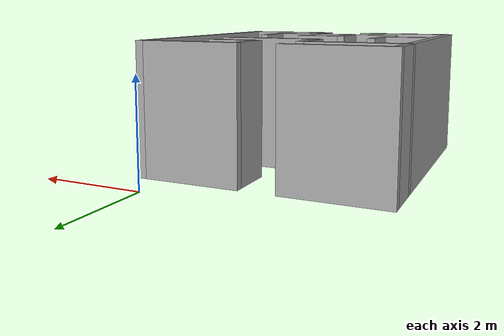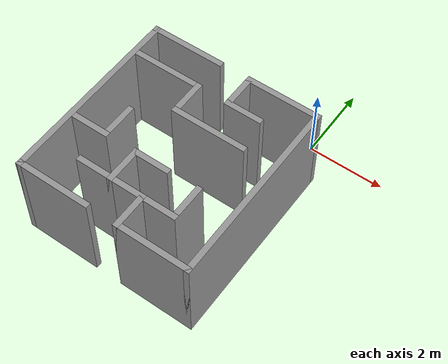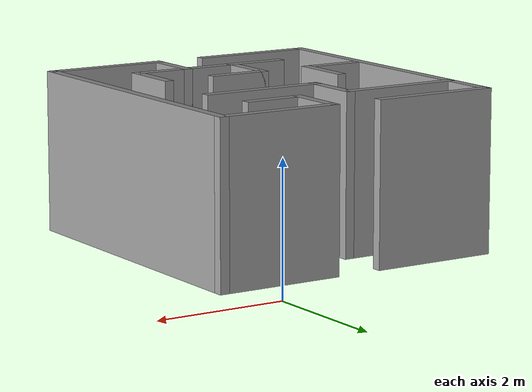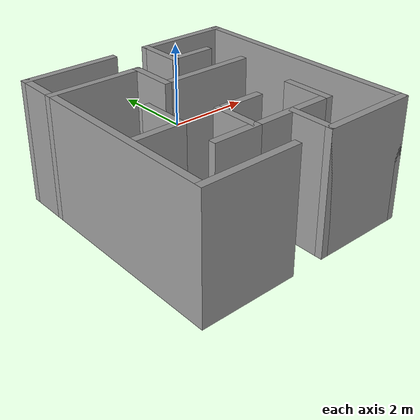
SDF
<?xml version='1.0'?>
<sdf version='1.6'>
  <model name='maze_1'>
    <pose frame=''>-1.815 -3.255 0 0 -0 0</pose>
    <link name='Wall_0'>
      <collision name='Wall_0_Collision'>
        <geometry>
          <box>
            <size>5 0.15 2.5</size>
          </box>
        </geometry>
        <pose frame=''>0 0 1.25 0 -0 0</pose>
      </collision>
      <visual name='Wall_0_Visual'>
        <pose frame=''>0 0 1.25 0 -0 0</pose>
        <geometry>
          <box>
            <size>5 0.15 2.5</size>
          </box>
        </geometry>
        <material>
          <script>
            <uri>file://media/materials/scripts/gazebo.material</uri>
            <name>Gazebo/Grey</name>
          </script>
          <ambient>1 1 1 1</ambient>
        </material>
        <meta>
          <layer>0</layer>
        </meta>
      </visual>
      <pose frame=''>-2.275 -0 0 0 -0 -1.5708</pose>
    </link>
    <link name='Wall_1'>
      <collision name='Wall_1_Collision'>
        <geometry>
          <box>
            <size>2 0.15 2.5</size>
          </box>
        </geometry>
        <pose frame=''>0 0 1.25 0 -0 0</pose>
      </collision>
      <visual name='Wall_1_Visual'>
        <pose frame=''>0 0 1.25 0 -0 0</pose>
        <geometry>
          <box>
            <size>2 0.15 2.5</size>
          </box>
        </geometry>
        <material>
          <script>
            <uri>file://media/materials/scripts/gazebo.material</uri>
            <name>Gazebo/Grey</name>
          </script>
          <ambient>1 1 1 1</ambient>
        </material>
        <meta>
          <layer>0</layer>
        </meta>
      </visual>
      <pose frame=''>-1.35 -2.425 0 0 -0 0</pose>
    </link>
    <link name='Wall_10'>
      <collision name='Wall_10_Collision'>
        <geometry>
          <box>
            <size>1 0.15 2.5</size>
          </box>
        </geometry>
        <pose frame=''>0 0 1.25 0 -0 0</pose>
      </collision>
      <visual name='Wall_10_Visual'>
        <pose frame=''>0 0 1.25 0 -0 0</pose>
        <geometry>
          <box>
            <size>1 0.15 2.5</size>
          </box>
        </geometry>
        <material>
          <script>
            <uri>file://media/materials/scripts/gazebo.material</uri>
            <name>Gazebo/Grey</name>
          </script>
          <ambient>1 1 1 1</ambient>
        </material>
        <meta>
          <layer>0</layer>
        </meta>
      </visual>
      <pose frame=''>0.85 1.575 0 0 -0 0</pose>
    </link>
    <link name='Wall_12'>
      <collision name='Wall_12_Collision'>
        <geometry>
          <box>
            <size>1 0.15 2.5</size>
          </box>
        </geometry>
        <pose frame=''>0 0 1.25 0 -0 0</pose>
      </collision>
      <visual name='Wall_12_Visual'>
        <pose frame=''>0 0 1.25 0 -0 0</pose>
        <geometry>
          <box>
            <size>1 0.15 2.5</size>
          </box>
        </geometry>
        <material>
          <script>
            <uri>file://media/materials/scripts/gazebo.material</uri>
            <name>Gazebo/Grey</name>
          </script>
          <ambient>1 1 1 1</ambient>
        </material>
        <meta>
          <layer>0</layer>
        </meta>
      </visual>
      <pose frame=''>0.425 -2 0 0 -0 1.5708</pose>
    </link>
    <link name='Wall_13'>
      <collision name='Wall_13_Collision'>
        <geometry>
          <box>
            <size>1 0.15 2.5</size>
          </box>
        </geometry>
        <pose frame=''>0 0 1.25 0 -0 0</pose>
      </collision>
      <visual name='Wall_13_Visual'>
        <pose frame=''>0 0 1.25 0 -0 0</pose>
        <geometry>
          <box>
            <size>1 0.15 2.5</size>
          </box>
        </geometry>
        <material>
          <script>
            <uri>file://media/materials/scripts/gazebo.material</uri>
            <name>Gazebo/Grey</name>
          </script>
          <ambient>1 1 1 1</ambient>
        </material>
        <meta>
          <layer>0</layer>
        </meta>
      </visual>
      <pose frame=''>0 -1.575 0 0 -0 3.14159</pose>
    </link>
    <link name='Wall_14'>
      <collision name='Wall_14_Collision'>
        <geometry>
          <box>
            <size>1 0.15 2.5</size>
          </box>
        </geometry>
        <pose frame=''>0 0 1.25 0 -0 0</pose>
      </collision>
      <visual name='Wall_14_Visual'>
        <pose frame=''>0 0 1.25 0 -0 0</pose>
        <geometry>
          <box>
            <size>1 0.15 2.5</size>
          </box>
        </geometry>
        <material>
          <script>
            <uri>file://media/materials/scripts/gazebo.material</uri>
            <name>Gazebo/Grey</name>
          </script>
          <ambient>1 1 1 1</ambient>
        </material>
        <meta>
          <layer>0</layer>
        </meta>
      </visual>
      <pose frame=''>-0.425 -1.15 0 0 -0 1.5708</pose>
    </link>
    <link name='Wall_15'>
      <collision name='Wall_15_Collision'>
        <geometry>
          <box>
            <size>1 0.15 2.5</size>
          </box>
        </geometry>
        <pose frame=''>0 0 1.25 0 -0 0</pose>
      </collision>
      <visual name='Wall_15_Visual'>
        <pose frame=''>0 0 1.25 0 -0 0</pose>
        <geometry>
          <box>
            <size>1 0.15 2.5</size>
          </box>
        </geometry>
        <material>
          <script>
            <uri>file://media/materials/scripts/gazebo.material</uri>
            <name>Gazebo/Grey</name>
          </script>
          <ambient>1 1 1 1</ambient>
        </material>
        <meta>
          <layer>0</layer>
        </meta>
      </visual>
      <pose frame=''>0 -0.725 0 0 -0 0</pose>
    </link>
    <link name='Wall_17'>
      <collision name='Wall_17_Collision'>
        <geometry>
          <box>
            <size>1 0.15 2.5</size>
          </box>
        </geometry>
        <pose frame=''>0 0 1.25 0 -0 0</pose>
      </collision>
      <visual name='Wall_17_Visual'>
        <pose frame=''>0 0 1.25 0 -0 0</pose>
        <geometry>
          <box>
            <size>1 0.15 2.5</size>
          </box>
        </geometry>
        <material>
          <script>
            <uri>file://media/materials/scripts/gazebo.material</uri>
            <name>Gazebo/Grey</name>
          </script>
          <ambient>1 1 1 1</ambient>
        </material>
        <meta>
          <layer>0</layer>
        </meta>
      </visual>
      <pose frame=''>0.85 -1.575 0 0 -0 0</pose>
    </link>
    <link name='Wall_18'>
      <collision name='Wall_18_Collision'>
        <geometry>
          <box>
            <size>1 0.15 2.5</size>
          </box>
        </geometry>
        <pose frame=''>0 0 1.25 0 -0 0</pose>
      </collision>
      <visual name='Wall_18_Visual'>
        <pose frame=''>0 0 1.25 0 -0 0</pose>
        <geometry>
          <box>
            <size>1 0.15 2.5</size>
          </box>
        </geometry>
        <material>
          <script>
            <uri>file://media/materials/scripts/gazebo.material</uri>
            <name>Gazebo/Grey</name>
          </script>
          <ambient>1 1 1 1</ambient>
        </material>
        <meta>
          <layer>0</layer>
        </meta>
      </visual>
      <pose frame=''>1.275 -1.15 0 0 -0 1.5708</pose>
    </link>
    <link name='Wall_20'>
      <collision name='Wall_20_Collision'>
        <geometry>
          <box>
            <size>1 0.15 2.5</size>
          </box>
        </geometry>
        <pose frame=''>0 0 1.25 0 -0 0</pose>
      </collision>
      <visual name='Wall_20_Visual'>
        <pose frame=''>0 0 1.25 0 -0 0</pose>
        <geometry>
          <box>
            <size>1 0.15 2.5</size>
          </box>
        </geometry>
        <material>
          <script>
            <uri>file://media/materials/scripts/gazebo.material</uri>
            <name>Gazebo/Grey</name>
          </script>
          <ambient>1 1 1 1</ambient>
        </material>
        <meta>
          <layer>0</layer>
        </meta>
      </visual>
      <pose frame=''>-0.85 -1.575 0 0 -0 3.14159</pose>
    </link>
    <link name='Wall_23'>
      <collision name='Wall_23_Collision'>
        <geometry>
          <box>
            <size>1 0.15 2.5</size>
          </box>
        </geometry>
        <pose frame=''>0 0 1.25 0 -0 0</pose>
      </collision>
      <visual name='Wall_23_Visual'>
        <pose frame=''>0 0 1.25 0 -0 0</pose>
        <geometry>
          <box>
            <size>1 0.15 2.5</size>
          </box>
        </geometry>
        <material>
          <script>
            <uri>file://media/materials/scripts/gazebo.material</uri>
            <name>Gazebo/Grey</name>
          </script>
          <ambient>1 1 1 1</ambient>
        </material>
        <meta>
          <layer>0</layer>
        </meta>
      </visual>
      <pose frame=''>-1.7 -0.725 0 0 -0 3.14159</pose>
    </link>
    <link name='Wall_25'>
      <collision name='Wall_25_Collision'>
        <geometry>
          <box>
            <size>1 0.15 2.5</size>
          </box>
        </geometry>
        <pose frame=''>0 0 1.25 0 -0 0</pose>
      </collision>
      <visual name='Wall_25_Visual'>
        <pose frame=''>0 0 1.25 0 -0 0</pose>
        <geometry>
          <box>
            <size>1 0.15 2.5</size>
          </box>
        </geometry>
        <material>
          <script>
            <uri>file://media/materials/scripts/gazebo.material</uri>
            <name>Gazebo/Grey</name>
          </script>
          <ambient>1 1 1 1</ambient>
        </material>
        <meta>
          <layer>0</layer>
        </meta>
      </visual>
      <pose frame=''>-1.275 -0.3 0 0 -0 1.5708</pose>
    </link>
    <link name='Wall_28'>
      <collision name='Wall_28_Collision'>
        <geometry>
          <box>
            <size>2 0.15 2.5</size>
          </box>
        </geometry>
        <pose frame=''>0 0 1.25 0 -0 0</pose>
      </collision>
      <visual name='Wall_28_Visual'>
        <pose frame=''>0 0 1.25 0 -0 0</pose>
        <geometry>
          <box>
            <size>2 0.15 2.5</size>
          </box>
        </geometry>
        <material>
          <script>
            <uri>file://media/materials/scripts/gazebo.material</uri>
            <name>Gazebo/Grey</name>
          </script>
          <ambient>1 1 1 1</ambient>
        </material>
        <meta>
          <layer>0</layer>
        </meta>
      </visual>
      <pose frame=''>-1.35 1.575 0 0 -0 3.14159</pose>
    </link>
    <link name='Wall_3'>
      <collision name='Wall_3_Collision'>
        <geometry>
          <box>
            <size>2 0.15 2.5</size>
          </box>
        </geometry>
        <pose frame=''>0 0 1.25 0 -0 0</pose>
      </collision>
      <visual name='Wall_3_Visual'>
        <pose frame=''>0 0 1.25 0 -0 0</pose>
        <geometry>
          <box>
            <size>2 0.15 2.5</size>
          </box>
        </geometry>
        <material>
          <script>
            <uri>file://media/materials/scripts/gazebo.material</uri>
            <name>Gazebo/Grey</name>
          </script>
          <ambient>1 1 1 1</ambient>
        </material>
        <meta>
          <layer>0</layer>
        </meta>
      </visual>
      <pose frame=''>1.35 -2.425 0 0 -0 0</pose>
    </link>
    <link name='Wall_30'>
      <collision name='Wall_30_Collision'>
        <geometry>
          <box>
            <size>1 0.15 2.5</size>
          </box>
        </geometry>
        <pose frame=''>0 0 1.25 0 -0 0</pose>
      </collision>
      <visual name='Wall_30_Visual'>
        <pose frame=''>0 0 1.25 0 -0 0</pose>
        <geometry>
          <box>
            <size>1 0.15 2.5</size>
          </box>
        </geometry>
        <material>
          <script>
            <uri>file://media/materials/scripts/gazebo.material</uri>
            <name>Gazebo/Grey</name>
          </script>
          <ambient>1 1 1 1</ambient>
        </material>
        <meta>
          <layer>0</layer>
        </meta>
      </visual>
      <pose frame=''>-0.425 1.15 0 0 -0 -1.5708</pose>
    </link>
    <link name='Wall_31'>
      <collision name='Wall_31_Collision'>
        <geometry>
          <box>
            <size>2 0.15 2.5</size>
          </box>
        </geometry>
        <pose frame=''>0 0 1.25 0 -0 0</pose>
      </collision>
      <visual name='Wall_31_Visual'>
        <pose frame=''>0 0 1.25 0 -0 0</pose>
        <geometry>
          <box>
            <size>2 0.15 2.5</size>
          </box>
        </geometry>
        <material>
          <script>
            <uri>file://media/materials/scripts/gazebo.material</uri>
            <name>Gazebo/Grey</name>
          </script>
          <ambient>1 1 1 1</ambient>
        </material>
        <meta>
          <layer>0</layer>
        </meta>
      </visual>
      <pose frame=''>0.5 0.725 0 0 -0 0</pose>
    </link>
    <link name='Wall_4'>
      <collision name='Wall_4_Collision'>
        <geometry>
          <box>
            <size>5 0.15 2.5</size>
          </box>
        </geometry>
        <pose frame=''>0 0 1.25 0 -0 0</pose>
      </collision>
      <visual name='Wall_4_Visual'>
        <pose frame=''>0 0 1.25 0 -0 0</pose>
        <geometry>
          <box>
            <size>5 0.15 2.5</size>
          </box>
        </geometry>
        <material>
          <script>
            <uri>file://media/materials/scripts/gazebo.material</uri>
            <name>Gazebo/Grey</name>
          </script>
          <ambient>1 1 1 1</ambient>
        </material>
        <meta>
          <layer>0</layer>
        </meta>
      </visual>
      <pose frame=''>2.275 -0 0 0 -0 1.5708</pose>
    </link>
    <link name='Wall_5'>
      <collision name='Wall_5_Collision'>
        <geometry>
          <box>
            <size>2 0.15 2.5</size>
          </box>
        </geometry>
        <pose frame=''>0 0 1.25 0 -0 0</pose>
      </collision>
      <visual name='Wall_5_Visual'>
        <pose frame=''>0 0 1.25 0 -0 0</pose>
        <geometry>
          <box>
            <size>2 0.15 2.5</size>
          </box>
        </geometry>
        <material>
          <script>
            <uri>file://media/materials/scripts/gazebo.material</uri>
            <name>Gazebo/Grey</name>
          </script>
          <ambient>1 1 1 1</ambient>
        </material>
        <meta>
          <layer>0</layer>
        </meta>
      </visual>
      <pose frame=''>1.35 2.425 0 0 -0 3.14159</pose>
    </link>
    <link name='Wall_7'>
      <collision name='Wall_7_Collision'>
        <geometry>
          <box>
            <size>2 0.15 2.5</size>
          </box>
        </geometry>
        <pose frame=''>0 0 1.25 0 -0 0</pose>
      </collision>
      <visual name='Wall_7_Visual'>
        <pose frame=''>0 0 1.25 0 -0 0</pose>
        <geometry>
          <box>
            <size>2 0.15 2.5</size>
          </box>
        </geometry>
        <material>
          <script>
            <uri>file://media/materials/scripts/gazebo.material</uri>
            <name>Gazebo/Grey</name>
          </script>
          <ambient>1 1 1 1</ambient>
        </material>
        <meta>
          <layer>0</layer>
        </meta>
      </visual>
      <pose frame=''>-1.35 2.425 0 0 -0 3.14159</pose>
    </link>
    <link name='Wall_9'>
      <collision name='Wall_9_Collision'>
        <geometry>
          <box>
            <size>1 0.15 2.5</size>
          </box>
        </geometry>
        <pose frame=''>0 0 1.25 0 -0 0</pose>
      </collision>
      <visual name='Wall_9_Visual'>
        <pose frame=''>0 0 1.25 0 -0 0</pose>
        <geometry>
          <box>
            <size>1 0.15 2.5</size>
          </box>
        </geometry>
        <material>
          <script>
            <uri>file://media/materials/scripts/gazebo.material</uri>
            <name>Gazebo/Grey</name>
          </script>
          <ambient>1 1 1 1</ambient>
        </material>
        <meta>
          <layer>0</layer>
        </meta>
      </visual>
      <pose frame=''>0.425 2 0 0 -0 -1.5708</pose>
    </link>
    <static>1</static>
  </model>
</sdf>
